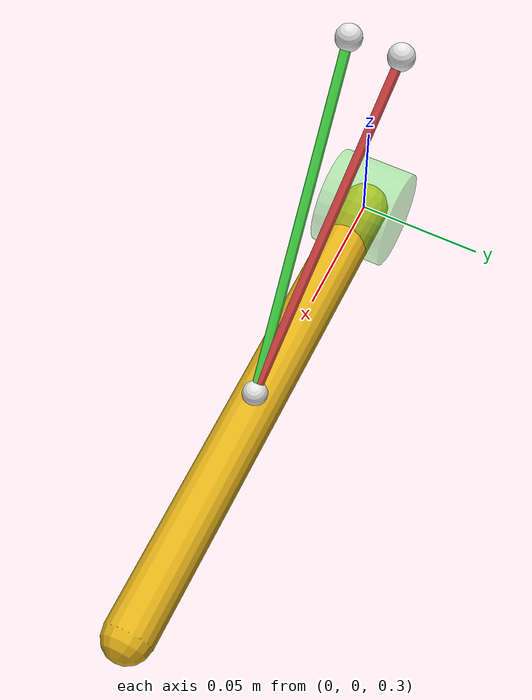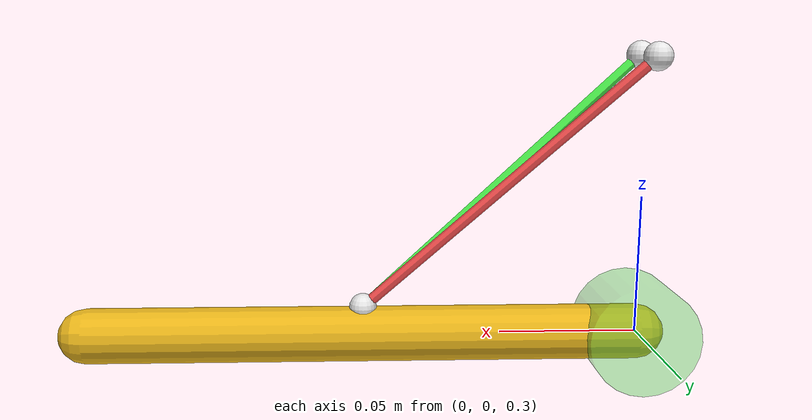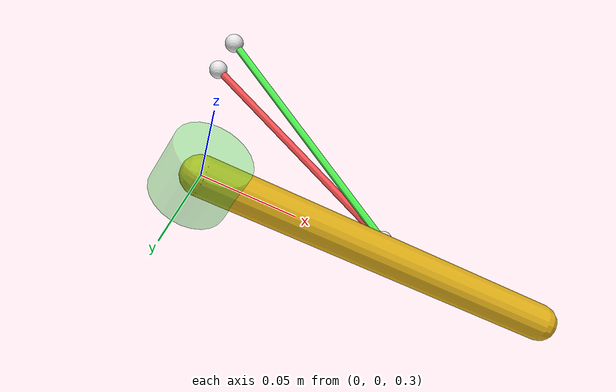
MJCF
<mujoco model="test">
    <compiler coordinate="global"/>

    <default>
        <geom rgba=".9 .7 .1 1" size="0.01"/>
        <site type="sphere" rgba=".9 .9 .9 1" size="0.005"/>
        <joint type="hinge" axis="0 1 0" limited="true" range="-30 60" solimplimit="0.95 0.95 0.1"/>
    </default>

    <visual>
        <headlight diffuse=".7 .7 .7"/>
    </visual>

    <worldbody>
        <site name="s0" pos="0 0.01 0.4"/>
        <site name="s1" pos="0 -0.01 0.4"/>

        <body>
            <geom type="capsule" fromto="0 0 0.3  0.2 0 0.3"/>
            <geom name="g1" type="cylinder" fromto="0.0 0.015 0.3  0.0 -0.015 0.3" size="0.02" rgba=".3 .9 .3 .4"/>
            <joint pos="0 0 0.3"/>
            <site name="s2" pos="0.1 0 0.31"/>
        </body>
    </worldbody>

    <tendon>
        <spatial name="red" width="0.002" rgba=".95 .3 .3 1" limited="true" range="0 0.33">
            <site site="s0"/>
            <geom geom="g1"/>
            <site site="s2"/>
        </spatial>
        <spatial name="green" width="0.002" rgba=".3 .95 .3 1" limited="true" range="0 0.33">
            <site site="s1"/>
            <geom geom="g1"/>
            <site site="s2"/>
        </spatial>
    </tendon>
    <actuator>
        <motor name="motor" tendon="red" gear="2"/>
        <muscle name="muscle" tendon="green"/>
    </actuator>
</mujoco>
